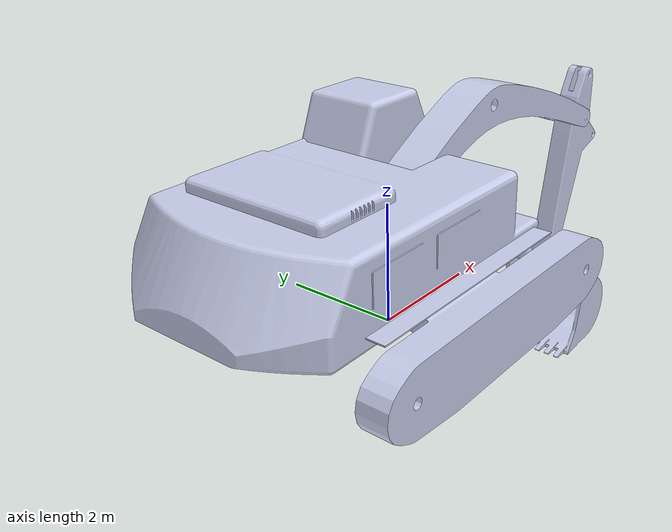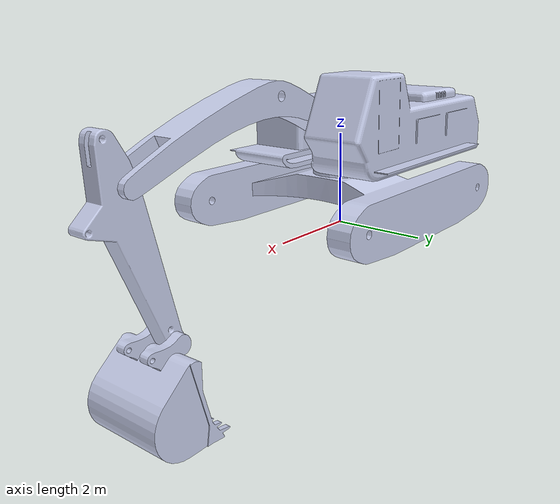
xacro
<?xml version="1.0"?>
<robot name="digger" xmlns:xacro="http://ros.org/wiki/xacro">

  <xacro:property name="M_PI" value="3.1415926536"/>

  <link name="base_footprint"/>
  <joint name="joint_0" type="fixed">
    <origin xyz="0 0 0.0532" rpy="0 0 0" />
    <parent link="base_footprint" />
    <child link="base_link" />
  </joint>

  <link name="base_link">
    <inertial>
      <origin xyz="1.235755685558E-07 1.67085512980947E-05 0.693218460012539" rpy="0 0 0" />
      <mass value="0.00001" />
      <inertia ixx="10" ixy="0.0" ixz="0.0" iyy="10" iyz="0.0" izz="10" />
    </inertial>
    <visual>
      <origin xyz="0 0 0" rpy="0 0 0"/>
      <geometry>
        <mesh filename="package://digger_description/meshes/base_link.STL" />
      </geometry>
      <material name="">
        <color rgba="0.79216 0.81961 0.93333 1" />
      </material>
    </visual>
    <collision>
      <origin xyz="0 0 0" rpy="0 0 0" />
      <geometry>
        <mesh filename="package://digger_description/meshes/base_link.STL" />
      </geometry>
    </collision>
  </link>

  <link name="link_1">
    <inertial>
      <origin xyz="-0.810334449798482 -0.0281797235706804 0.159158888527585" rpy="0 0 0" />
      <mass value="0.00001" />
      <inertia ixx="10" ixy="0.0" ixz="0.0" iyy="10" iyz="0.0" izz="10" />
    </inertial>
    <visual>>
      <origin xyz="0 0 0" rpy="0 0 0" />
      <geometry>
        <mesh filename="package://digger_description/meshes/link_1.STL" />
      </geometry>
      <material name="">
        <color rgba="0.79216 0.81961 0.93333 1" />
      </material>
    </visual>
    <collision>
      <origin xyz="0 0 0" rpy="0 0 0" />
      <geometry>
        <mesh filename="package://digger_description/meshes/link_1.STL" />
      </geometry>
    </collision>
  </link>
  <joint name="joint_1" type="revolute">
    <origin xyz="0 0 1.902" rpy="0 0 0" />
    <parent link="base_link" />
    <child link="link_1" />
    <axis xyz="0 0 1" />
    <limit lower="-3" upper="3" effort="100" velocity="3" />
  </joint>

  <link name="link_2">
    <inertial>>
      <origin xyz="2.47859721455657 0.769775336895938 0.107043225293441" rpy="0 0 0" />
      <mass value="0.00001" />
      <inertia ixx="10" ixy="0.0" ixz="0.0" iyy="10" iyz="0.0" izz="10" />
    </inertial>
    <visual>
      <origin xyz="0 0 0" rpy="0 0 0" />
      <geometry>
        <mesh filename="package://digger_description/meshes/link_2.STL" />
      </geometry>
      <material name="">
        <color rgba="0.79216 0.81961 0.93333 1" />
      </material>
    </visual>
    <collision>
      <origin xyz="0 0 0" rpy="0 0 0" />
      <geometry>
        <mesh filename="package://digger_description/meshes/link_2.STL" />
      </geometry>
    </collision>
  </link>
  <joint name="joint_2" type="revolute">
    <origin xyz="0.100000000000001 0 0" rpy="1.5707963267949 0 0" />
    <parent link="link_1" />
    <child link="link_2" />
    <axis xyz="0 0 -1" />
    <limit lower="-1.03603337" upper="0.79873632" effort="100" velocity="3" />
  </joint>

  <link name="link_3">
    <inertial>
      <origin xyz="1.26681031955835 -0.835106173483516 0.298594184763093" rpy="0 0 0" />
      <mass value="0.00001" />
      <inertia ixx="10" ixy="0.0" ixz="0.0" iyy="10" iyz="0.0" izz="10" />
    </inertial>
    <visual>
      <origin xyz="0 0 0" rpy="0 0 0" />
      <geometry>
        <mesh filename="package://digger_description/meshes/link_3.STL" />
      </geometry>
      <material name="">
        <color rgba="0.79216 0.81961 0.93333 1" />
      </material>
    </visual>
    <collision>
      <origin xyz="0 0 0" rpy="0 0 0" />
      <geometry>
        <mesh filename="package://digger_description/meshes/link_3.STL" />
      </geometry>
    </collision>
  </link>
  <joint name="joint_3" type="revolute">
    <origin xyz="5.69999999999995 0 0" rpy="0 0.0264322179099897 0.0264322179099896" />
    <parent link="link_2" />
    <child link="link_3" />
    <axis xyz="0.0264291401525029 0 -0.999650689266406" />
    <limit lower="0.70447397" upper="2.95519698" effort="100" velocity="3" />
  </joint>

  <link name="link_4">
    <inertial>
      <origin xyz="1.82255765410341 0.223852348098357 0.590227289463811" rpy="0 0 0" />
      <mass value="0.00001" />
      <inertia ixx="10" ixy="0.0" ixz="0.0" iyy="10" iyz="0.0" izz="10" />
    </inertial>
    <visual>
      <origin xyz="0 0 0" rpy="0 0 0" />
      <geometry>
        <mesh filename="package://digger_description/meshes/link_4.STL" />
      </geometry>
      <material name="">
        <color rgba="0.79216 0.81961 0.93333 1" />
      </material>
    </visual>
    <collision>
      <origin xyz="0 0 0" rpy="0 0 0" />
      <geometry>
        <mesh filename="package://digger_description/meshes/link_4.STL" />
      </geometry>
    </collision>
  </link>
  <joint name="joint_4" type="revolute">
    <origin xyz="2.92397826610424 -0.0773322479303254 0.0773052349460714" rpy="0.000698743414096259 -0.0264229827028247 -0.026441449890071" />
    <parent link="link_3" />
    <child link="link_4" />
    <axis xyz="0 0 -1" />
    <limit lower="-0.56332572" upper="2.41949305" effort="100" velocity="3" />
  </joint>

  <link name="tool0"/>
  <joint name="joint_tool0" type="fixed">
    <origin xyz="1.4698 0 0" rpy="0 0 0" />
    <parent link="link_4" />
    <child link="tool0" />
  </joint>

  <!-- Transmissions for ROS Control -->
  <xacro:macro name="transmission_block" params="joint_name">
    <transmission name="tran1">
      <type>transmission_interface/SimpleTransmission</type>
      <joint name="${joint_name}">
        <hardwareInterface>hardware_interface/PositionJointInterface</hardwareInterface>
      </joint>
      <actuator name="motor1">
        <hardwareInterface>hardware_interface/PositionJointInterface</hardwareInterface>
        <mechanicalReduction>1</mechanicalReduction>
      </actuator>
    </transmission>
  </xacro:macro>

  <xacro:transmission_block joint_name="joint_1"/>
  <xacro:transmission_block joint_name="joint_2"/>
  <xacro:transmission_block joint_name="joint_3"/>
  <xacro:transmission_block joint_name="joint_4"/>

  <!-- ros_control plugin -->
  <gazebo>
    <plugin name="gazebo_ros_control" filename="libgazebo_ros_control.so">
      <robotNamespace>/digger</robotNamespace>
      <robotSimType>gazebo_ros_control/DefaultRobotHWSim</robotSimType>
      <legacyModeNS>true</legacyModeNS>
    </plugin>
  </gazebo>

</robot>
